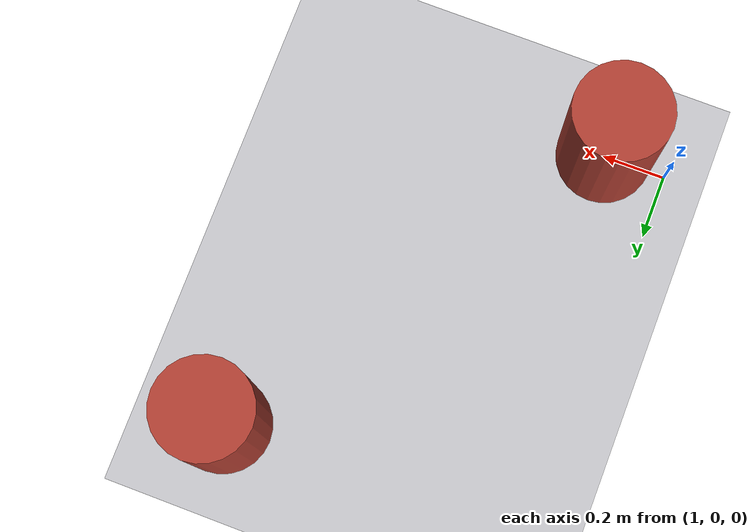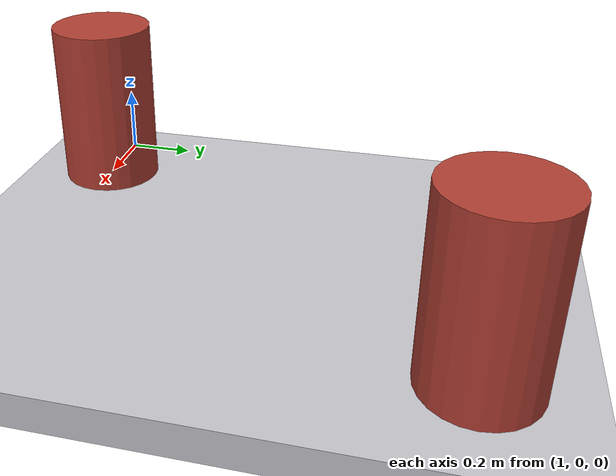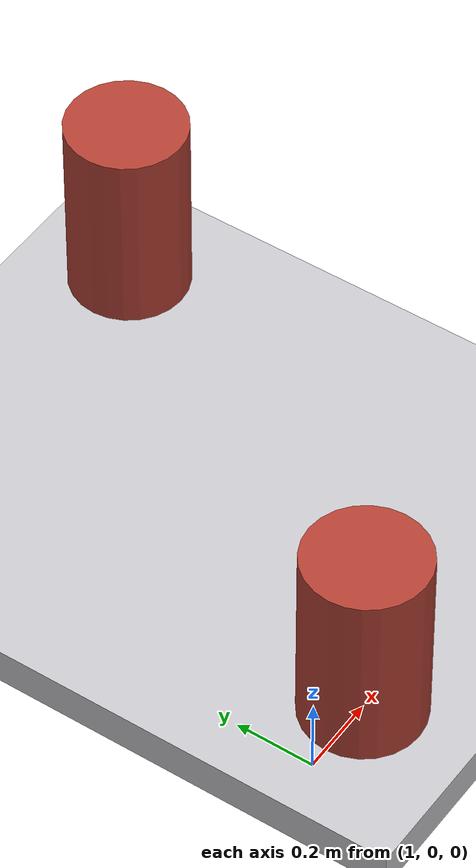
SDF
<?xml version="1.0" ?>
<!--
  空场景 world：只放地面 + 光照，用于"运动控制/能见度对比"这类不关心墙体的实验。
  用法：
    ros2 launch maze_mouse maze_bringup.launch.py \
      world:=$HOME/maze_ws/src/maze_mouse/world/empty.world
-->
<sdf version="1.6">
  <world name="empty_world">

    <physics type="ode">
      <max_step_size>0.001</max_step_size>
      <real_time_update_rate>1000</real_time_update_rate>
    </physics>

    <scene>
      <ambient>0.55 0.55 0.6 1</ambient>
      <background>0.25 0.25 0.30 1</background>
      <shadows>1</shadows>
    </scene>

    <light type="directional" name="sun">
      <cast_shadows>true</cast_shadows>
      <pose>0 0 10 0 0 0</pose>
      <diffuse>0.9 0.9 0.9 1</diffuse>
      <specular>0.15 0.15 0.15 1</specular>
      <attenuation>
        <range>1000</range>
        <constant>0.9</constant>
        <linear>0.01</linear>
        <quadratic>0.001</quadratic>
      </attenuation>
      <direction>-0.5 0.35 -0.9</direction>
    </light>

    <model name="ground">
      <static>true</static>
      <pose>0 0 -0.05 0 0 0</pose>
      <link name="link">
        <collision name="collision">
          <geometry><box><size>16 16 0.1</size></box></geometry>
        </collision>
        <visual name="visual">
          <geometry><box><size>16 16 0.1</size></box></geometry>
          <material>
            <ambient>0.78 0.78 0.8 1</ambient>
            <diffuse>0.78 0.78 0.8 1</diffuse>
          </material>
        </visual>
      </link>
    </model>

    <!-- 几个圆柱障碍，用来演示"反应式避障" -->
    <model name="obstacle_1">
      <static>true</static>
      <pose>1.2 0.0 0.25 0 0 0</pose>
      <link name="link">
        <collision name="collision">
          <geometry><cylinder><radius>0.15</radius><length>0.5</length></cylinder></geometry>
        </collision>
        <visual name="visual">
          <geometry><cylinder><radius>0.15</radius><length>0.5</length></cylinder></geometry>
          <material>
            <ambient>0.7 0.25 0.2 1</ambient>
            <diffuse>0.7 0.25 0.2 1</diffuse>
          </material>
        </visual>
      </link>
    </model>

    <model name="obstacle_2">
      <static>true</static>
      <pose>2.0 1.2 0.25 0 0 0</pose>
      <link name="link">
        <collision name="collision">
          <geometry><cylinder><radius>0.15</radius><length>0.5</length></cylinder></geometry>
        </collision>
        <visual name="visual">
          <geometry><cylinder><radius>0.15</radius><length>0.5</length></cylinder></geometry>
          <material>
            <ambient>0.7 0.25 0.2 1</ambient>
            <diffuse>0.7 0.25 0.2 1</diffuse>
          </material>
        </visual>
      </link>
    </model>
    <!-- 默认观察视角：从南侧斜俯视，方便看避障过程 -->
    <gui fullscreen="0">
      <camera name="user_camera">
        <pose>0.0 -3.6 2.8 0 0.66 1.5708</pose>
      </camera>
    </gui>

  </world>
</sdf>
